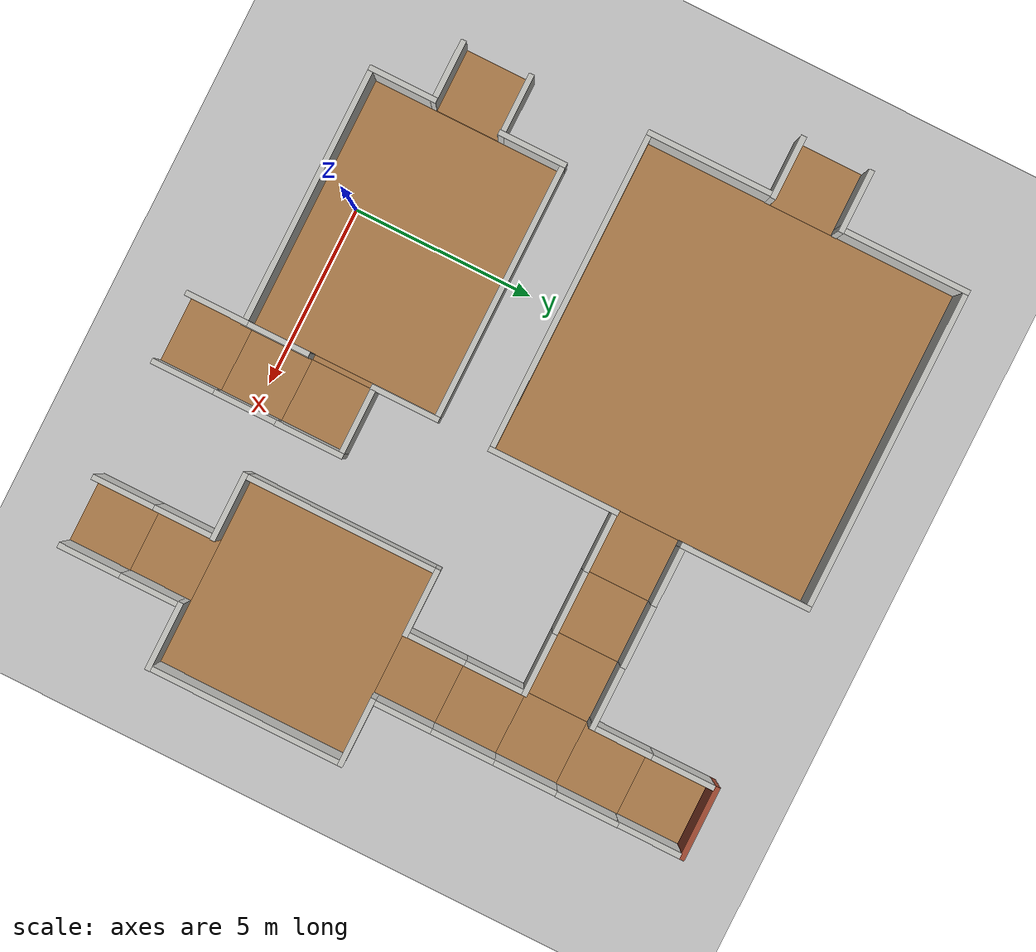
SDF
<sdf version="1.6">
 <world name="default">
  <model name="ground_plane">
   <static>1</static>
   <link name="link">
    <collision name="collision">
     <geometry><plane><normal>0 0 1</normal><size>100 100</size></plane></geometry>
     <surface><friction><ode><mu>100</mu><mu2>50</mu2></ode></friction></surface>
    </collision>
    <visual name="visual">
     <cast_shadows>0</cast_shadows>
     <geometry><plane><normal>0 0 1</normal><size>100 100</size></plane></geometry>
     <material>
      <script><uri>file://media/materials/scripts/gazebo.material</uri><name>Gazebo/Grey</name></script>
     </material>
    </visual>
   </link>
  </model>
  <model name="nerve_straight_8">
   <pose>4.83322 -1.87129 0 0 -0 0</pose>
   <link name="Wall_0">
    <collision name="Wall_0_Collision">
     <geometry><box><size>1.76 1.75 0.2</size></box></geometry>
     <pose>0 0 0.1 0 -0 0</pose>
    </collision>
    <visual name="Wall_0_Visual">
     <pose>0 0 0.1 0 -0 0</pose>
     <geometry><box><size>1.76 1.75 0.2</size></box></geometry>
     <material>
      <script><uri>file://media/materials/scripts/gazebo.material</uri><name>Gazebo/Wood</name></script>
      <ambient>1 0.764706 0.305882 1</ambient>
     </material>
    </visual>
    <pose>0.005 -0.002 0 0 -0 3.14159</pose>
   </link>
   <link name="Wall_2">
    <collision name="Wall_2_Collision">
     <geometry><box><size>1.75 0.15 1.5</size></box></geometry>
     <pose>0 0 0.75 0 -0 0</pose>
    </collision>
    <visual name="Wall_2_Visual">
     <pose>0 0 0.75 0 -0 0</pose>
     <geometry><box><size>1.75 0.15 1.5</size></box></geometry>
     <material>
      <script><uri>file://media/materials/scripts/gazebo.material</uri><name>Gazebo/CeilingTiled</name></script>
      <ambient>1 0.764706 0.305882 1</ambient>
     </material>
    </visual>
    <pose>-0.955 0.002 0 0 0 -1.5708</pose>
   </link>
   <link name="Wall_4">
    <collision name="Wall_4_Collision">
     <geometry><box><size>1.75 0.15 1.5</size></box></geometry>
     <pose>0 0 0.75 0 -0 0</pose>
    </collision>
    <visual name="Wall_4_Visual">
     <pose>0 0 0.75 0 -0 0</pose>
     <geometry><box><size>1.75 0.15 1.5</size></box></geometry>
     <material>
      <script><uri>file://media/materials/scripts/gazebo.material</uri><name>Gazebo/CeilingTiled</name></script>
      <ambient>1 0.764706 0.305882 1</ambient>
     </material>
    </visual>
    <pose>0.955 0.002 0 0 0 -1.5708</pose>
   </link>
   <static>1</static>
  </model>
  <model name="nerve_straight_8_clone">
   <pose>4.83651 -0.139064 0 0 -0 0</pose>
   <link name="Wall_0">
    <collision name="Wall_0_Collision">
     <geometry><box><size>1.76 1.75 0.2</size></box></geometry>
     <pose>0 0 0.1 0 -0 0</pose>
    </collision>
    <visual name="Wall_0_Visual">
     <pose>0 0 0.1 0 -0 0</pose>
     <geometry><box><size>1.76 1.75 0.2</size></box></geometry>
     <material>
      <script><uri>file://media/materials/scripts/gazebo.material</uri><name>Gazebo/Wood</name></script>
      <ambient>1 0.764706 0.305882 1</ambient>
     </material>
    </visual>
    <pose>0.005 -0.002 0 0 -0 3.14159</pose>
   </link>
   <link name="Wall_2">
    <collision name="Wall_2_Collision">
     <geometry><box><size>1.75 0.15 1.5</size></box></geometry>
     <pose>0 0 0.75 0 -0 0</pose>
    </collision>
    <visual name="Wall_2_Visual">
     <pose>0 0 0.75 0 -0 0</pose>
     <geometry><box><size>1.75 0.15 1.5</size></box></geometry>
     <material>
      <script><uri>file://media/materials/scripts/gazebo.material</uri><name>Gazebo/CeilingTiled</name></script>
      <ambient>1 0.764706 0.305882 1</ambient>
     </material>
    </visual>
    <pose>-0.955 0.002 0 0 0 -1.5708</pose>
   </link>
   <link name="Wall_4">
    <collision name="Wall_4_Collision">
     <geometry><box><size>1.75 0.15 1.5</size></box></geometry>
     <pose>0 0 0.75 0 -0 0</pose>
    </collision>
    <visual name="Wall_4_Visual">
     <pose>0 0 0.75 0 -0 0</pose>
     <geometry><box><size>1.75 0.15 1.5</size></box></geometry>
     <material>
      <script><uri>file://media/materials/scripts/gazebo.material</uri><name>Gazebo/CeilingTiled</name></script>
      <ambient>1 0.764706 0.305882 1</ambient>
     </material>
    </visual>
    <pose>0.955 0.002 0 0 0 -1.5708</pose>
   </link>
   <static>1</static>
  </model>
  <model name="nerve_corner_5_clone">
   <pose>4.91717 1.68935 0 0 0 -1.5708</pose>
   <link name="Wall_0">
    <collision name="Wall_0_Collision">
     <geometry><box><size>1.76 1.75 0.2</size></box></geometry>
     <pose>0 0 0.1 0 -0 0</pose>
    </collision>
    <visual name="Wall_0_Visual">
     <pose>0 0 0.1 0 -0 0</pose>
     <geometry><box><size>1.76 1.75 0.2</size></box></geometry>
     <material>
      <script><uri>file://media/materials/scripts/gazebo.material</uri><name>Gazebo/Wood</name></script>
      <ambient>1 0.764706 0.305882 1</ambient>
     </material>
    </visual>
    <pose>0.077507 -0.077007 0 0 -0 3.14159</pose>
   </link>
   <link name="Wall_2">
    <collision name="Wall_2_Collision">
     <geometry><box><size>1.75 0.15 1.5</size></box></geometry>
     <pose>0 0 0.75 0 -0 0</pose>
    </collision>
    <visual name="Wall_2_Visual">
     <pose>0 0 0.75 0 -0 0</pose>
     <geometry><box><size>1.75 0.15 1.5</size></box></geometry>
     <material>
      <script><uri>file://media/materials/scripts/gazebo.material</uri><name>Gazebo/CeilingTiled</name></script>
      <ambient>1 0.764706 0.305882 1</ambient>
     </material>
    </visual>
    <pose>-0.882493 -0.073007 0 0 0 -1.5708</pose>
   </link>
   <link name="Wall_4">
    <collision name="Wall_4_Collision">
     <geometry><box><size>1.91042 0.15 1.5</size></box></geometry>
     <pose>0 0 0.75 0 -0 0</pose>
    </collision>
    <visual name="Wall_4_Visual">
     <pose>0 0 0.75 0 -0 0</pose>
     <geometry><box><size>1.91042 0.15 1.5</size></box></geometry>
     <material>
      <script><uri>file://media/materials/scripts/gazebo.material</uri><name>Gazebo/CeilingTiled</name></script>
      <ambient>1 0.764706 0.305882 1</ambient>
     </material>
    </visual>
    <pose>-0.002284 0.876825 0 0 -0 3.1414</pose>
   </link>
   <static>1</static>
  </model>
  <model name="nerve_room_3x4">
   <pose>0.32204 1.61667 0 0 0 -1.5708</pose>
   <link name="Wall_11">
    <collision name="Wall_11_Collision">
     <geometry><box><size>7 0.15 1.5</size></box></geometry>
     <pose>0 0 0.75 0 -0 0</pose>
    </collision>
    <visual name="Wall_11_Visual">
     <pose>0 0 0.75 0 -0 0</pose>
     <geometry><box><size>7 0.15 1.5</size></box></geometry>
     <material>
      <script><uri>file://media/materials/scripts/gazebo.material</uri><name>Gazebo/CeilingTiled</name></script>
      <ambient>1 0.764706 0.305882 1</ambient>
     </material>
    </visual>
    <pose>-2.69862 -0.000423 0 0 0 -1.5708</pose>
   </link>
   <link name="Wall_13">
    <collision name="Wall_13_Collision">
     <geometry><box><size>7 0.15 1.5</size></box></geometry>
     <pose>0 0 0.75 0 -0 0</pose>
    </collision>
    <visual name="Wall_13_Visual">
     <pose>0 0 0.75 0 -0 0</pose>
     <geometry><box><size>7 0.15 1.5</size></box></geometry>
     <material>
      <script><uri>file://media/materials/scripts/gazebo.material</uri><name>Gazebo/CeilingTiled</name></script>
      <ambient>1 0.764706 0.305882 1</ambient>
     </material>
    </visual>
    <pose>2.69862 -0.000308 0 0 0 -1.5708</pose>
   </link>
   <link name="Wall_15">
    <collision name="Wall_15_Collision">
     <geometry><box><size>1.9 0.15 1.5</size></box></geometry>
     <pose>0 0 0.75 0 -0 0</pose>
    </collision>
    <visual name="Wall_15_Visual">
     <pose>0 0 0.75 0 -0 0</pose>
     <geometry><box><size>1.9 0.15 1.5</size></box></geometry>
     <material>
      <script><uri>file://media/materials/scripts/gazebo.material</uri><name>Gazebo/CeilingTiled</name></script>
      <ambient>1 0.764706 0.305882 1</ambient>
     </material>
    </visual>
    <pose>-1.82276 -3.57547 0 0 -0 0</pose>
   </link>
   <link name="Wall_17">
    <collision name="Wall_17_Collision">
     <geometry><box><size>1.9 0.15 1.5</size></box></geometry>
     <pose>0 0 0.75 0 -0 0</pose>
    </collision>
    <visual name="Wall_17_Visual">
     <pose>0 0 0.75 0 -0 0</pose>
     <geometry><box><size>1.9 0.15 1.5</size></box></geometry>
     <material>
      <script><uri>file://media/materials/scripts/gazebo.material</uri><name>Gazebo/CeilingTiled</name></script>
      <ambient>1 0.764706 0.305882 1</ambient>
     </material>
    </visual>
    <pose>-1.82217 3.57448 0 0 -0 0</pose>
   </link>
   <link name="Wall_19">
    <collision name="Wall_19_Collision">
     <geometry><box><size>1.9 0.15 1.5</size></box></geometry>
     <pose>0 0 0.75 0 -0 0</pose>
    </collision>
    <visual name="Wall_19_Visual">
     <pose>0 0 0.75 0 -0 0</pose>
     <geometry><box><size>1.9 0.15 1.5</size></box></geometry>
     <material>
      <script><uri>file://media/materials/scripts/gazebo.material</uri><name>Gazebo/CeilingTiled</name></script>
      <ambient>1 0.764706 0.305882 1</ambient>
     </material>
    </visual>
    <pose>1.82197 3.57547 0 0 -0 0</pose>
   </link>
   <link name="Wall_21">
    <collision name="Wall_21_Collision">
     <geometry><box><size>1.9 0.15 1.5</size></box></geometry>
     <pose>0 0 0.75 0 -0 0</pose>
    </collision>
    <visual name="Wall_21_Visual">
     <pose>0 0 0.75 0 -0 0</pose>
     <geometry><box><size>1.9 0.15 1.5</size></box></geometry>
     <material>
      <script><uri>file://media/materials/scripts/gazebo.material</uri><name>Gazebo/CeilingTiled</name></script>
      <ambient>1 0.764706 0.305882 1</ambient>
     </material>
    </visual>
    <pose>1.82281 -3.57503 0 0 -0 0</pose>
   </link>
   <link name="Wall_6">
    <collision name="Wall_6_Collision">
     <geometry><box><size>7 5.25 0.2</size></box></geometry>
     <pose>0 0 0.1 0 -0 0</pose>
    </collision>
    <visual name="Wall_6_Visual">
     <pose>0 0 0.1 0 -0 0</pose>
     <geometry><box><size>7 5.25 0.2</size></box></geometry>
     <material>
      <script><uri>file://media/materials/scripts/gazebo.material</uri><name>Gazebo/Wood</name></script>
      <ambient>1 0.764706 0.305882 1</ambient>
     </material>
    </visual>
    <pose>-0.001169 -0.000255 0 0 -0 1.5708</pose>
   </link>
   <static>1</static>
  </model>
  <model name="nerve_platform_0">
   <pose>3.80884 1.61462 0 0 -0 0</pose>
   <link name="Wall_6">
    <collision name="Wall_6_Collision">
     <geometry><box><size>1.76 1.75 0.2</size></box></geometry>
     <pose>0 0 0.1 0 -0 0</pose>
    </collision>
    <visual name="Wall_6_Visual">
     <pose>0 0 0.1 0 -0 0</pose>
     <geometry><box><size>1.76 1.75 0.2</size></box></geometry>
     <material>
      <script><uri>file://media/materials/scripts/gazebo.material</uri><name>Gazebo/Wood</name></script>
      <ambient>1 0.764706 0.305882 1</ambient>
     </material>
    </visual>
    <pose>0 0 0 0 -0 1.5708</pose>
   </link>
   <static>1</static>
  </model>
  <model name="nerve_straight_9">
   <pose>-4.05488 1.62658 0 0 0 -1.5708</pose>
   <link name="Wall_0">
    <collision name="Wall_0_Collision">
     <geometry><box><size>1.76 1.75 0.2</size></box></geometry>
     <pose>0 0 0.1 0 -0 0</pose>
    </collision>
    <visual name="Wall_0_Visual">
     <pose>0 0 0.1 0 -0 0</pose>
     <geometry><box><size>1.76 1.75 0.2</size></box></geometry>
     <material>
      <script><uri>file://media/materials/scripts/gazebo.material</uri><name>Gazebo/Wood</name></script>
      <ambient>1 0.764706 0.305882 1</ambient>
     </material>
    </visual>
    <pose>0.005 -0.002 0 0 -0 3.14159</pose>
   </link>
   <link name="Wall_2">
    <collision name="Wall_2_Collision">
     <geometry><box><size>1.75 0.15 1.5</size></box></geometry>
     <pose>0 0 0.75 0 -0 0</pose>
    </collision>
    <visual name="Wall_2_Visual">
     <pose>0 0 0.75 0 -0 0</pose>
     <geometry><box><size>1.75 0.15 1.5</size></box></geometry>
     <material>
      <script><uri>file://media/materials/scripts/gazebo.material</uri><name>Gazebo/CeilingTiled</name></script>
      <ambient>1 0.764706 0.305882 1</ambient>
     </material>
    </visual>
    <pose>-0.955 0.002 0 0 0 -1.5708</pose>
   </link>
   <link name="Wall_4">
    <collision name="Wall_4_Collision">
     <geometry><box><size>1.75 0.15 1.5</size></box></geometry>
     <pose>0 0 0.75 0 -0 0</pose>
    </collision>
    <visual name="Wall_4_Visual">
     <pose>0 0 0.75 0 -0 0</pose>
     <geometry><box><size>1.75 0.15 1.5</size></box></geometry>
     <material>
      <script><uri>file://media/materials/scripts/gazebo.material</uri><name>Gazebo/CeilingTiled</name></script>
      <ambient>1 0.764706 0.305882 1</ambient>
     </material>
    </visual>
    <pose>0.955 0.002 0 0 0 -1.5708</pose>
   </link>
   <static>1</static>
  </model>
  <model name="nerve_straight_9_clone_0">
   <pose>-5.71933 10.3491 0 0 0 -1.5708</pose>
   <link name="Wall_0">
    <collision name="Wall_0_Collision">
     <geometry><box><size>1.76 1.75 0.2</size></box></geometry>
     <pose>0 0 0.1 0 -0 0</pose>
    </collision>
    <visual name="Wall_0_Visual">
     <pose>0 0 0.1 0 -0 0</pose>
     <geometry><box><size>1.76 1.75 0.2</size></box></geometry>
     <material>
      <script><uri>file://media/materials/scripts/gazebo.material</uri><name>Gazebo/Wood</name></script>
      <ambient>1 0.764706 0.305882 1</ambient>
     </material>
    </visual>
    <pose>0.005 -0.002 0 0 -0 3.14159</pose>
   </link>
   <link name="Wall_2">
    <collision name="Wall_2_Collision">
     <geometry><box><size>1.75 0.15 1.5</size></box></geometry>
     <pose>0 0 0.75 0 -0 0</pose>
    </collision>
    <visual name="Wall_2_Visual">
     <pose>0 0 0.75 0 -0 0</pose>
     <geometry><box><size>1.75 0.15 1.5</size></box></geometry>
     <material>
      <script><uri>file://media/materials/scripts/gazebo.material</uri><name>Gazebo/CeilingTiled</name></script>
      <ambient>1 0.764706 0.305882 1</ambient>
     </material>
    </visual>
    <pose>-0.955 0.002 0 0 0 -1.5708</pose>
   </link>
   <link name="Wall_4">
    <collision name="Wall_4_Collision">
     <geometry><box><size>1.75 0.15 1.5</size></box></geometry>
     <pose>0 0 0.75 0 -0 0</pose>
    </collision>
    <visual name="Wall_4_Visual">
     <pose>0 0 0.75 0 -0 0</pose>
     <geometry><box><size>1.75 0.15 1.5</size></box></geometry>
     <material>
      <script><uri>file://media/materials/scripts/gazebo.material</uri><name>Gazebo/CeilingTiled</name></script>
      <ambient>1 0.764706 0.305882 1</ambient>
     </material>
    </visual>
    <pose>0.955 0.002 0 0 0 -1.5708</pose>
   </link>
   <static>1</static>
  </model>
  <model name="nerve_room_5x5ARENA_straight">
   <pose>-0.47707 10.3505 0 0 -0 1.5708</pose>
   <link name="Wall_11">
    <collision name="Wall_11_Collision">
     <geometry><box><size>8.75 0.15 1.5</size></box></geometry>
     <pose>0 0 0.75 0 -0 0</pose>
    </collision>
    <visual name="Wall_11_Visual">
     <pose>0 0 0.75 0 -0 0</pose>
     <geometry><box><size>8.75 0.15 1.5</size></box></geometry>
     <material>
      <script><uri>file://media/materials/scripts/gazebo.material</uri><name>Gazebo/CeilingTiled</name></script>
      <ambient>1 0.764706 0.305882 1</ambient>
     </material>
    </visual>
    <pose>4.4489 -0.000387 0 0 0 -1.5708</pose>
   </link>
   <link name="Wall_13">
    <collision name="Wall_13_Collision">
     <geometry><box><size>8.75 0.15 1.5</size></box></geometry>
     <pose>0 0 0.75 0 -0 0</pose>
    </collision>
    <visual name="Wall_13_Visual">
     <pose>0 0 0.75 0 -0 0</pose>
     <geometry><box><size>8.75 0.15 1.5</size></box></geometry>
     <material>
      <script><uri>file://media/materials/scripts/gazebo.material</uri><name>Gazebo/CeilingTiled</name></script>
      <ambient>1 0.764706 0.305882 1</ambient>
     </material>
    </visual>
    <pose>-4.44913 0.000846 0 0 0 -1.5708</pose>
   </link>
   <link name="Wall_15">
    <collision name="Wall_15_Collision">
     <geometry><box><size>3.65 0.15 1.5</size></box></geometry>
     <pose>0 0 0.75 0 -0 0</pose>
    </collision>
    <visual name="Wall_15_Visual">
     <pose>0 0 0.75 0 -0 0</pose>
     <geometry><box><size>3.65 0.15 1.5</size></box></geometry>
     <material>
      <script><uri>file://media/materials/scripts/gazebo.material</uri><name>Gazebo/CeilingTiled</name></script>
      <ambient>1 0.764706 0.305882 1</ambient>
     </material>
    </visual>
    <pose>2.69939 -4.45071 0 0 -0 0</pose>
   </link>
   <link name="Wall_17">
    <collision name="Wall_17_Collision">
     <geometry><box><size>3.65 0.15 1.5</size></box></geometry>
     <pose>0 0 0.75 0 -0 0</pose>
    </collision>
    <visual name="Wall_17_Visual">
     <pose>0 0 0.75 0 -0 0</pose>
     <geometry><box><size>3.65 0.15 1.5</size></box></geometry>
     <material>
      <script><uri>file://media/materials/scripts/gazebo.material</uri><name>Gazebo/CeilingTiled</name></script>
      <ambient>1 0.764706 0.305882 1</ambient>
     </material>
    </visual>
    <pose>-2.69939 4.45071 0 0 -0 0</pose>
   </link>
   <link name="Wall_19">
    <collision name="Wall_19_Collision">
     <geometry><box><size>3.65 0.15 1.5</size></box></geometry>
     <pose>0 0 0.75 0 -0 0</pose>
    </collision>
    <visual name="Wall_19_Visual">
     <pose>0 0 0.75 0 -0 0</pose>
     <geometry><box><size>3.65 0.15 1.5</size></box></geometry>
     <material>
      <script><uri>file://media/materials/scripts/gazebo.material</uri><name>Gazebo/CeilingTiled</name></script>
      <ambient>1 0.764706 0.305882 1</ambient>
     </material>
    </visual>
    <pose>2.69903 4.44972 0 0 -0 0</pose>
   </link>
   <link name="Wall_21">
    <collision name="Wall_21_Collision">
     <geometry><box><size>3.65 0.15 1.5</size></box></geometry>
     <pose>0 0 0.75 0 -0 0</pose>
    </collision>
    <visual name="Wall_21_Visual">
     <pose>0 0 0.75 0 -0 0</pose>
     <geometry><box><size>3.65 0.15 1.5</size></box></geometry>
     <material>
      <script><uri>file://media/materials/scripts/gazebo.material</uri><name>Gazebo/CeilingTiled</name></script>
      <ambient>1 0.764706 0.305882 1</ambient>
     </material>
    </visual>
    <pose>-2.69904 -4.44976 0 0 -0 0</pose>
   </link>
   <link name="Wall_6">
    <collision name="Wall_6_Collision">
     <geometry><box><size>8.76 8.75 0.2</size></box></geometry>
     <pose>0 0 0.1 0 -0 0</pose>
    </collision>
    <visual name="Wall_6_Visual">
     <pose>0 0 0.1 0 -0 0</pose>
     <geometry><box><size>8.76 8.75 0.2</size></box></geometry>
     <material>
      <script><uri>file://media/materials/scripts/gazebo.material</uri><name>Gazebo/Wood</name></script>
      <ambient>1 0.764706 0.305882 1</ambient>
     </material>
    </visual>
    <pose>0.000265 -0.004129 0 0 -0 1.5708</pose>
   </link>
   <static>1</static>
  </model>
  <model name="nerve_room_3x3">
   <pose>10.024 3.3493 0 0 -0 0</pose>
   <link name="Wall_11">
    <collision name="Wall_11_Collision">
     <geometry><box><size>5.25 0.15 1.5</size></box></geometry>
     <pose>0 0 0.75 0 -0 0</pose>
    </collision>
    <visual name="Wall_11_Visual">
     <pose>0 0 0.75 0 -0 0</pose>
     <geometry><box><size>5.25 0.15 1.5</size></box></geometry>
     <material>
      <script><uri>file://media/materials/scripts/gazebo.material</uri><name>Gazebo/CeilingTiled</name></script>
      <ambient>1 0.764706 0.305882 1</ambient>
     </material>
    </visual>
    <pose>-2.69653 -0.003278 0 0 0 -1.5708</pose>
   </link>
   <link name="Wall_13">
    <collision name="Wall_13_Collision">
     <geometry><box><size>5.25 0.15 1.5</size></box></geometry>
     <pose>0 0 0.75 0 -0 0</pose>
    </collision>
    <visual name="Wall_13_Visual">
     <pose>0 0 0.75 0 -0 0</pose>
     <geometry><box><size>5.25 0.15 1.5</size></box></geometry>
     <material>
      <script><uri>file://media/materials/scripts/gazebo.material</uri><name>Gazebo/CeilingTiled</name></script>
      <ambient>1 0.764706 0.305882 1</ambient>
     </material>
    </visual>
    <pose>2.69688 -0.000452 0 0 0 -1.5708</pose>
   </link>
   <link name="Wall_15">
    <collision name="Wall_15_Collision">
     <geometry><box><size>1.9 0.15 1.5</size></box></geometry>
     <pose>0 0 0.75 0 -0 0</pose>
    </collision>
    <visual name="Wall_15_Visual">
     <pose>0 0 0.75 0 -0 0</pose>
     <geometry><box><size>1.9 0.15 1.5</size></box></geometry>
     <material>
      <script><uri>file://media/materials/scripts/gazebo.material</uri><name>Gazebo/CeilingTiled</name></script>
      <ambient>1 0.764706 0.305882 1</ambient>
     </material>
    </visual>
    <pose>-1.82279 -2.70217 0 0 -0 0</pose>
   </link>
   <link name="Wall_17">
    <collision name="Wall_17_Collision">
     <geometry><box><size>1.9 0.15 1.5</size></box></geometry>
     <pose>0 0 0.75 0 -0 0</pose>
    </collision>
    <visual name="Wall_17_Visual">
     <pose>0 0 0.75 0 -0 0</pose>
     <geometry><box><size>1.9 0.15 1.5</size></box></geometry>
     <material>
      <script><uri>file://media/materials/scripts/gazebo.material</uri><name>Gazebo/CeilingTiled</name></script>
      <ambient>1 0.764706 0.305882 1</ambient>
     </material>
    </visual>
    <pose>-1.82219 2.69878 0 0 -0 0</pose>
   </link>
   <link name="Wall_19">
    <collision name="Wall_19_Collision">
     <geometry><box><size>1.9 0.15 1.5</size></box></geometry>
     <pose>0 0 0.75 0 -0 0</pose>
    </collision>
    <visual name="Wall_19_Visual">
     <pose>0 0 0.75 0 -0 0</pose>
     <geometry><box><size>1.9 0.15 1.5</size></box></geometry>
     <material>
      <script><uri>file://media/materials/scripts/gazebo.material</uri><name>Gazebo/CeilingTiled</name></script>
      <ambient>1 0.764706 0.305882 1</ambient>
     </material>
    </visual>
    <pose>1.82194 2.70217 0 0 -0 0</pose>
   </link>
   <link name="Wall_21">
    <collision name="Wall_21_Collision">
     <geometry><box><size>1.9 0.15 1.5</size></box></geometry>
     <pose>0 0 0.75 0 -0 0</pose>
    </collision>
    <visual name="Wall_21_Visual">
     <pose>0 0 0.75 0 -0 0</pose>
     <geometry><box><size>1.9 0.15 1.5</size></box></geometry>
     <material>
      <script><uri>file://media/materials/scripts/gazebo.material</uri><name>Gazebo/CeilingTiled</name></script>
      <ambient>1 0.764706 0.305882 1</ambient>
     </material>
    </visual>
    <pose>1.82279 -2.70173 0 0 -0 0</pose>
   </link>
   <link name="Wall_6">
    <collision name="Wall_6_Collision">
     <geometry><box><size>5.26 5.25 0.2</size></box></geometry>
     <pose>0 0 0.1 0 -0 0</pose>
    </collision>
    <visual name="Wall_6_Visual">
     <pose>0 0 0.1 0 -0 0</pose>
     <geometry><box><size>5.26 5.25 0.2</size></box></geometry>
     <material>
      <script><uri>file://media/materials/scripts/gazebo.material</uri><name>Gazebo/Wood</name></script>
      <ambient>1 0.764706 0.305882 1</ambient>
     </material>
    </visual>
    <pose>-0.001194 0.003047 0 0 -0 1.5708</pose>
   </link>
   <static>1</static>
  </model>
  <model name="nerve_straight_11">
   <pose>4.78029 10.352 0 0 0 -1.5708</pose>
   <link name="Wall_0">
    <collision name="Wall_0_Collision">
     <geometry><box><size>1.76 1.75 0.2</size></box></geometry>
     <pose>0 0 0.1 0 -0 0</pose>
    </collision>
    <visual name="Wall_0_Visual">
     <pose>0 0 0.1 0 -0 0</pose>
     <geometry><box><size>1.76 1.75 0.2</size></box></geometry>
     <material>
      <script><uri>file://media/materials/scripts/gazebo.material</uri><name>Gazebo/Wood</name></script>
      <ambient>1 0.764706 0.305882 1</ambient>
     </material>
    </visual>
    <pose>0.005 -0.002 0 0 -0 3.14159</pose>
   </link>
   <link name="Wall_2">
    <collision name="Wall_2_Collision">
     <geometry><box><size>1.75 0.15 1.5</size></box></geometry>
     <pose>0 0 0.75 0 -0 0</pose>
    </collision>
    <visual name="Wall_2_Visual">
     <pose>0 0 0.75 0 -0 0</pose>
     <geometry><box><size>1.75 0.15 1.5</size></box></geometry>
     <material>
      <script><uri>file://media/materials/scripts/gazebo.material</uri><name>Gazebo/CeilingTiled</name></script>
      <ambient>1 0.764706 0.305882 1</ambient>
     </material>
    </visual>
    <pose>-0.955 0.002 0 0 0 -1.5708</pose>
   </link>
   <link name="Wall_4">
    <collision name="Wall_4_Collision">
     <geometry><box><size>1.75 0.15 1.5</size></box></geometry>
     <pose>0 0 0.75 0 -0 0</pose>
    </collision>
    <visual name="Wall_4_Visual">
     <pose>0 0 0.75 0 -0 0</pose>
     <geometry><box><size>1.75 0.15 1.5</size></box></geometry>
     <material>
      <script><uri>file://media/materials/scripts/gazebo.material</uri><name>Gazebo/CeilingTiled</name></script>
      <ambient>1 0.764706 0.305882 1</ambient>
     </material>
    </visual>
    <pose>0.955 0.002 0 0 0 -1.5708</pose>
   </link>
   <static>1</static>
  </model>
  <model name="nerve_straight_12">
   <pose>6.52537 10.3551 0 0 0 -1.5708</pose>
   <link name="Wall_0">
    <collision name="Wall_0_Collision">
     <geometry><box><size>1.76 1.75 0.2</size></box></geometry>
     <pose>0 0 0.1 0 -0 0</pose>
    </collision>
    <visual name="Wall_0_Visual">
     <pose>0 0 0.1 0 -0 0</pose>
     <geometry><box><size>1.76 1.75 0.2</size></box></geometry>
     <material>
      <script><uri>file://media/materials/scripts/gazebo.material</uri><name>Gazebo/Wood</name></script>
      <ambient>1 0.764706 0.305882 1</ambient>
     </material>
    </visual>
    <pose>0.005 -0.002 0 0 -0 3.14159</pose>
   </link>
   <link name="Wall_2">
    <collision name="Wall_2_Collision">
     <geometry><box><size>1.75 0.15 1.5</size></box></geometry>
     <pose>0 0 0.75 0 -0 0</pose>
    </collision>
    <visual name="Wall_2_Visual">
     <pose>0 0 0.75 0 -0 0</pose>
     <geometry><box><size>1.75 0.15 1.5</size></box></geometry>
     <material>
      <script><uri>file://media/materials/scripts/gazebo.material</uri><name>Gazebo/CeilingTiled</name></script>
      <ambient>1 0.764706 0.305882 1</ambient>
     </material>
    </visual>
    <pose>-0.955 0.002 0 0 0 -1.5708</pose>
   </link>
   <link name="Wall_4">
    <collision name="Wall_4_Collision">
     <geometry><box><size>1.75 0.15 1.5</size></box></geometry>
     <pose>0 0 0.75 0 -0 0</pose>
    </collision>
    <visual name="Wall_4_Visual">
     <pose>0 0 0.75 0 -0 0</pose>
     <geometry><box><size>1.75 0.15 1.5</size></box></geometry>
     <material>
      <script><uri>file://media/materials/scripts/gazebo.material</uri><name>Gazebo/CeilingTiled</name></script>
      <ambient>1 0.764706 0.305882 1</ambient>
     </material>
    </visual>
    <pose>0.955 0.002 0 0 0 -1.5708</pose>
   </link>
   <static>1</static>
  </model>
  <model name="nerve_straight_12_clone">
   <pose>8.26364 10.3519 0 0 0 -1.5708</pose>
   <link name="Wall_0">
    <collision name="Wall_0_Collision">
     <geometry><box><size>1.76 1.75 0.2</size></box></geometry>
     <pose>0 0 0.1 0 -0 0</pose>
    </collision>
    <visual name="Wall_0_Visual">
     <pose>0 0 0.1 0 -0 0</pose>
     <geometry><box><size>1.76 1.75 0.2</size></box></geometry>
     <material>
      <script><uri>file://media/materials/scripts/gazebo.material</uri><name>Gazebo/Wood</name></script>
      <ambient>1 0.764706 0.305882 1</ambient>
     </material>
    </visual>
    <pose>0.005 -0.002 0 0 -0 3.14159</pose>
   </link>
   <link name="Wall_2">
    <collision name="Wall_2_Collision">
     <geometry><box><size>1.75 0.15 1.5</size></box></geometry>
     <pose>0 0 0.75 0 -0 0</pose>
    </collision>
    <visual name="Wall_2_Visual">
     <pose>0 0 0.75 0 -0 0</pose>
     <geometry><box><size>1.75 0.15 1.5</size></box></geometry>
     <material>
      <script><uri>file://media/materials/scripts/gazebo.material</uri><name>Gazebo/CeilingTiled</name></script>
      <ambient>1 0.764706 0.305882 1</ambient>
     </material>
    </visual>
    <pose>-0.955 0.002 0 0 0 -1.5708</pose>
   </link>
   <link name="Wall_4">
    <collision name="Wall_4_Collision">
     <geometry><box><size>1.75 0.15 1.5</size></box></geometry>
     <pose>0 0 0.75 0 -0 0</pose>
    </collision>
    <visual name="Wall_4_Visual">
     <pose>0 0 0.75 0 -0 0</pose>
     <geometry><box><size>1.75 0.15 1.5</size></box></geometry>
     <material>
      <script><uri>file://media/materials/scripts/gazebo.material</uri><name>Gazebo/CeilingTiled</name></script>
      <ambient>1 0.764706 0.305882 1</ambient>
     </material>
    </visual>
    <pose>0.955 0.002 0 0 0 -1.5708</pose>
   </link>
   <static>1</static>
  </model>
  <model name="nerve_straight_12_clone_0">
   <pose>10.0238 12.0922 0 0 0 -4e-06</pose>
   <link name="Wall_0">
    <collision name="Wall_0_Collision">
     <geometry><box><size>1.76 1.75 0.2</size></box></geometry>
     <pose>0 0 0.1 0 -0 0</pose>
    </collision>
    <visual name="Wall_0_Visual">
     <pose>0 0 0.1 0 -0 0</pose>
     <geometry><box><size>1.76 1.75 0.2</size></box></geometry>
     <material>
      <script><uri>file://media/materials/scripts/gazebo.material</uri><name>Gazebo/Wood</name></script>
      <ambient>1 0.764706 0.305882 1</ambient>
     </material>
    </visual>
    <pose>0.005 -0.002 0 0 -0 3.14159</pose>
   </link>
   <link name="Wall_2">
    <collision name="Wall_2_Collision">
     <geometry><box><size>1.75 0.15 1.5</size></box></geometry>
     <pose>0 0 0.75 0 -0 0</pose>
    </collision>
    <visual name="Wall_2_Visual">
     <pose>0 0 0.75 0 -0 0</pose>
     <geometry><box><size>1.75 0.15 1.5</size></box></geometry>
     <material>
      <script><uri>file://media/materials/scripts/gazebo.material</uri><name>Gazebo/CeilingTiled</name></script>
      <ambient>1 0.764706 0.305882 1</ambient>
     </material>
    </visual>
    <pose>-0.955 0.002 0 0 0 -1.5708</pose>
   </link>
   <link name="Wall_4">
    <collision name="Wall_4_Collision">
     <geometry><box><size>1.75 0.15 1.5</size></box></geometry>
     <pose>0 0 0.75 0 -0 0</pose>
    </collision>
    <visual name="Wall_4_Visual">
     <pose>0 0 0.75 0 -0 0</pose>
     <geometry><box><size>1.75 0.15 1.5</size></box></geometry>
     <material>
      <script><uri>file://media/materials/scripts/gazebo.material</uri><name>Gazebo/CeilingTiled</name></script>
      <ambient>1 0.764706 0.305882 1</ambient>
     </material>
    </visual>
    <pose>0.955 0.002 0 0 0 -1.5708</pose>
   </link>
   <static>1</static>
  </model>
  <model name="nerve_straight_12_clone_1">
   <pose>10.0195 8.59681 0 0 -0 3.14159</pose>
   <link name="Wall_0">
    <collision name="Wall_0_Collision">
     <geometry><box><size>1.76 1.75 0.2</size></box></geometry>
     <pose>0 0 0.1 0 -0 0</pose>
    </collision>
    <visual name="Wall_0_Visual">
     <pose>0 0 0.1 0 -0 0</pose>
     <geometry><box><size>1.76 1.75 0.2</size></box></geometry>
     <material>
      <script><uri>file://media/materials/scripts/gazebo.material</uri><name>Gazebo/Wood</name></script>
      <ambient>1 0.764706 0.305882 1</ambient>
     </material>
    </visual>
    <pose>0.005 -0.002 0 0 -0 3.14159</pose>
   </link>
   <link name="Wall_2">
    <collision name="Wall_2_Collision">
     <geometry><box><size>1.75 0.15 1.5</size></box></geometry>
     <pose>0 0 0.75 0 -0 0</pose>
    </collision>
    <visual name="Wall_2_Visual">
     <pose>0 0 0.75 0 -0 0</pose>
     <geometry><box><size>1.75 0.15 1.5</size></box></geometry>
     <material>
      <script><uri>file://media/materials/scripts/gazebo.material</uri><name>Gazebo/CeilingTiled</name></script>
      <ambient>1 0.764706 0.305882 1</ambient>
     </material>
    </visual>
    <pose>-0.955 0.002 0 0 0 -1.5708</pose>
   </link>
   <link name="Wall_4">
    <collision name="Wall_4_Collision">
     <geometry><box><size>1.75 0.15 1.5</size></box></geometry>
     <pose>0 0 0.75 0 -0 0</pose>
    </collision>
    <visual name="Wall_4_Visual">
     <pose>0 0 0.75 0 -0 0</pose>
     <geometry><box><size>1.75 0.15 1.5</size></box></geometry>
     <material>
      <script><uri>file://media/materials/scripts/gazebo.material</uri><name>Gazebo/CeilingTiled</name></script>
      <ambient>1 0.764706 0.305882 1</ambient>
     </material>
    </visual>
    <pose>0.955 0.002 0 0 0 -1.5708</pose>
   </link>
   <static>1</static>
  </model>
  <model name="nerve_onewall_1">
   <pose>10.092 10.3466 0 0 0 -3.14159</pose>
   <link name="Wall_0">
    <collision name="Wall_0_Collision">
     <geometry><box><size>1.76 1.75 0.2</size></box></geometry>
     <pose>0 0 0.1 0 -0 0</pose>
    </collision>
    <visual name="Wall_0_Visual">
     <pose>0 0 0.1 0 -0 0</pose>
     <geometry><box><size>1.76 1.75 0.2</size></box></geometry>
     <material>
      <script><uri>file://media/materials/scripts/gazebo.material</uri><name>Gazebo/Wood</name></script>
      <ambient>1 0.764706 0.305882 1</ambient>
     </material>
    </visual>
    <pose>0.0775 -0.002 0 0 -0 3.14159</pose>
   </link>
   <link name="Wall_2">
    <collision name="Wall_2_Collision">
     <geometry><box><size>1.75 0.15 1.5</size></box></geometry>
     <pose>0 0 0.75 0 -0 0</pose>
    </collision>
    <visual name="Wall_2_Visual">
     <pose>0 0 0.75 0 -0 0</pose>
     <geometry><box><size>1.75 0.15 1.5</size></box></geometry>
     <material>
      <script><uri>file://media/materials/scripts/gazebo.material</uri><name>Gazebo/CeilingTiled</name></script>
      <ambient>1 0.764706 0.305882 1</ambient>
     </material>
    </visual>
    <pose>-0.8825 0.002 0 0 0 -1.5708</pose>
   </link>
   <static>1</static>
  </model>
  <model name="nerve_end_0">
   <pose>10.0242 13.8925 0 0 -0 0</pose>
   <link name="Wall_0">
    <collision name="Wall_0_Collision">
     <geometry><box><size>1.76 1.75 0.2</size></box></geometry>
     <pose>0 0 0.1 0 -0 0</pose>
    </collision>
    <visual name="Wall_0_Visual">
     <pose>0 0 0.1 0 -0 0</pose>
     <geometry><box><size>1.76 1.75 0.2</size></box></geometry>
     <material>
      <script><uri>file://media/materials/scripts/gazebo.material</uri><name>Gazebo/Wood</name></script>
      <ambient>1 0.764706 0.305882 1</ambient>
     </material>
    </visual>
    <pose>-0.009 -0.064 0 0 -0 0</pose>
   </link>
   <link name="Wall_2">
    <collision name="Wall_2_Collision">
     <geometry><box><size>1.8 0.15 1.5</size></box></geometry>
     <pose>0 0 0.75 0 -0 0</pose>
    </collision>
    <visual name="Wall_2_Visual">
     <pose>0 0 0.75 0 -0 0</pose>
     <geometry><box><size>1.8 0.15 1.5</size></box></geometry>
     <material>
      <script><uri>file://media/materials/scripts/gazebo.material</uri><name>Gazebo/CeilingTiled</name></script>
      <ambient>1 0.764706 0.305882 1</ambient>
     </material>
    </visual>
    <pose>-0.95 -0.065 0 0 0 -1.5708</pose>
   </link>
   <link name="Wall_4">
    <collision name="Wall_4_Collision">
     <geometry><box><size>1.8 0.15 1.5</size></box></geometry>
     <pose>0 0 0.75 0 -0 0</pose>
    </collision>
    <visual name="Wall_4_Visual">
     <pose>0 0 0.75 0 -0 0</pose>
     <geometry><box><size>1.8 0.15 1.5</size></box></geometry>
     <material>
      <script><uri>file://media/materials/scripts/gazebo.material</uri><name>Gazebo/CeilingTiled</name></script>
      <ambient>1 0.764706 0.305882 1</ambient>
     </material>
    </visual>
    <pose>0.95 -0.065 0 0 0 -1.5708</pose>
   </link>
   <link name="Wall_6">
    <collision name="Wall_6_Collision">
     <geometry><box><size>2.05 0.15 1.5</size></box></geometry>
     <pose>0 0 0.75 0 -0 0</pose>
    </collision>
    <visual name="Wall_6_Visual">
     <pose>0 0 0.75 0 -0 0</pose>
     <geometry><box><size>2.05 0.15 1.5</size></box></geometry>
     <material>
      <script><uri>file://media/materials/scripts/gazebo.material</uri><name>Gazebo/Bricks</name></script>
      <ambient>0.996078 0.47451 0.0196078 1</ambient>
     </material>
    </visual>
    <pose>0 0.89 0 0 -0 0</pose>
   </link>
   <static>1</static>
  </model>
  <model name="nerve_straight_12_clone_1_clone">
   <pose>10.023 6.85178 0 0 -0 3.14159</pose>
   <link name="Wall_0">
    <collision name="Wall_0_Collision">
     <geometry><box><size>1.76 1.75 0.2</size></box></geometry>
     <pose>0 0 0.1 0 -0 0</pose>
    </collision>
    <visual name="Wall_0_Visual">
     <pose>0 0 0.1 0 -0 0</pose>
     <geometry><box><size>1.76 1.75 0.2</size></box></geometry>
     <material>
      <script><uri>file://media/materials/scripts/gazebo.material</uri><name>Gazebo/Wood</name></script>
      <ambient>1 0.764706 0.305882 1</ambient>
     </material>
    </visual>
    <pose>0.005 -0.002 0 0 -0 3.14159</pose>
   </link>
   <link name="Wall_2">
    <collision name="Wall_2_Collision">
     <geometry><box><size>1.75 0.15 1.5</size></box></geometry>
     <pose>0 0 0.75 0 -0 0</pose>
    </collision>
    <visual name="Wall_2_Visual">
     <pose>0 0 0.75 0 -0 0</pose>
     <geometry><box><size>1.75 0.15 1.5</size></box></geometry>
     <material>
      <script><uri>file://media/materials/scripts/gazebo.material</uri><name>Gazebo/CeilingTiled</name></script>
      <ambient>1 0.764706 0.305882 1</ambient>
     </material>
    </visual>
    <pose>-0.955 0.002 0 0 0 -1.5708</pose>
   </link>
   <link name="Wall_4">
    <collision name="Wall_4_Collision">
     <geometry><box><size>1.75 0.15 1.5</size></box></geometry>
     <pose>0 0 0.75 0 -0 0</pose>
    </collision>
    <visual name="Wall_4_Visual">
     <pose>0 0 0.75 0 -0 0</pose>
     <geometry><box><size>1.75 0.15 1.5</size></box></geometry>
     <material>
      <script><uri>file://media/materials/scripts/gazebo.material</uri><name>Gazebo/CeilingTiled</name></script>
      <ambient>1 0.764706 0.305882 1</ambient>
     </material>
    </visual>
    <pose>0.955 0.002 0 0 0 -1.5708</pose>
   </link>
   <static>1</static>
  </model>
  <model name="nerve_straight_12_clone_1_clone_clone">
   <pose>10.0206 -0.155026 0 0 -0 3.14159</pose>
   <link name="Wall_0">
    <collision name="Wall_0_Collision">
     <geometry><box><size>1.76 1.75 0.2</size></box></geometry>
     <pose>0 0 0.1 0 -0 0</pose>
    </collision>
    <visual name="Wall_0_Visual">
     <pose>0 0 0.1 0 -0 0</pose>
     <geometry><box><size>1.76 1.75 0.2</size></box></geometry>
     <material>
      <script><uri>file://media/materials/scripts/gazebo.material</uri><name>Gazebo/Wood</name></script>
      <ambient>1 0.764706 0.305882 1</ambient>
     </material>
    </visual>
    <pose>0.005 -0.002 0 0 -0 3.14159</pose>
   </link>
   <link name="Wall_2">
    <collision name="Wall_2_Collision">
     <geometry><box><size>1.75 0.15 1.5</size></box></geometry>
     <pose>0 0 0.75 0 -0 0</pose>
    </collision>
    <visual name="Wall_2_Visual">
     <pose>0 0 0.75 0 -0 0</pose>
     <geometry><box><size>1.75 0.15 1.5</size></box></geometry>
     <material>
      <script><uri>file://media/materials/scripts/gazebo.material</uri><name>Gazebo/CeilingTiled</name></script>
      <ambient>1 0.764706 0.305882 1</ambient>
     </material>
    </visual>
    <pose>-0.955 0.002 0 0 0 -1.5708</pose>
   </link>
   <link name="Wall_4">
    <collision name="Wall_4_Collision">
     <geometry><box><size>1.75 0.15 1.5</size></box></geometry>
     <pose>0 0 0.75 0 -0 0</pose>
    </collision>
    <visual name="Wall_4_Visual">
     <pose>0 0 0.75 0 -0 0</pose>
     <geometry><box><size>1.75 0.15 1.5</size></box></geometry>
     <material>
      <script><uri>file://media/materials/scripts/gazebo.material</uri><name>Gazebo/CeilingTiled</name></script>
      <ambient>1 0.764706 0.305882 1</ambient>
     </material>
    </visual>
    <pose>0.955 0.002 0 0 0 -1.5708</pose>
   </link>
   <static>1</static>
  </model>
  <model name="nerve_straight_12_clone_1_clone_clone_0">
   <pose>10.0214 -1.8901 0 0 -0 3.14159</pose>
   <link name="Wall_0">
    <collision name="Wall_0_Collision">
     <geometry><box><size>1.76 1.75 0.2</size></box></geometry>
     <pose>0 0 0.1 0 -0 0</pose>
    </collision>
    <visual name="Wall_0_Visual">
     <pose>0 0 0.1 0 -0 0</pose>
     <geometry><box><size>1.76 1.75 0.2</size></box></geometry>
     <material>
      <script><uri>file://media/materials/scripts/gazebo.material</uri><name>Gazebo/Wood</name></script>
      <ambient>1 0.764706 0.305882 1</ambient>
     </material>
    </visual>
    <pose>0.005 -0.002 0 0 -0 3.14159</pose>
   </link>
   <link name="Wall_2">
    <collision name="Wall_2_Collision">
     <geometry><box><size>1.75 0.15 1.5</size></box></geometry>
     <pose>0 0 0.75 0 -0 0</pose>
    </collision>
    <visual name="Wall_2_Visual">
     <pose>0 0 0.75 0 -0 0</pose>
     <geometry><box><size>1.75 0.15 1.5</size></box></geometry>
     <material>
      <script><uri>file://media/materials/scripts/gazebo.material</uri><name>Gazebo/CeilingTiled</name></script>
      <ambient>1 0.764706 0.305882 1</ambient>
     </material>
    </visual>
    <pose>-0.955 0.002 0 0 0 -1.5708</pose>
   </link>
   <link name="Wall_4">
    <collision name="Wall_4_Collision">
     <geometry><box><size>1.75 0.15 1.5</size></box></geometry>
     <pose>0 0 0.75 0 -0 0</pose>
    </collision>
    <visual name="Wall_4_Visual">
     <pose>0 0 0.75 0 -0 0</pose>
     <geometry><box><size>1.75 0.15 1.5</size></box></geometry>
     <material>
      <script><uri>file://media/materials/scripts/gazebo.material</uri><name>Gazebo/CeilingTiled</name></script>
      <ambient>1 0.764706 0.305882 1</ambient>
     </material>
    </visual>
    <pose>0.955 0.002 0 0 0 -1.5708</pose>
   </link>
   <static>1</static>
  </model>
 </world>
</sdf>
